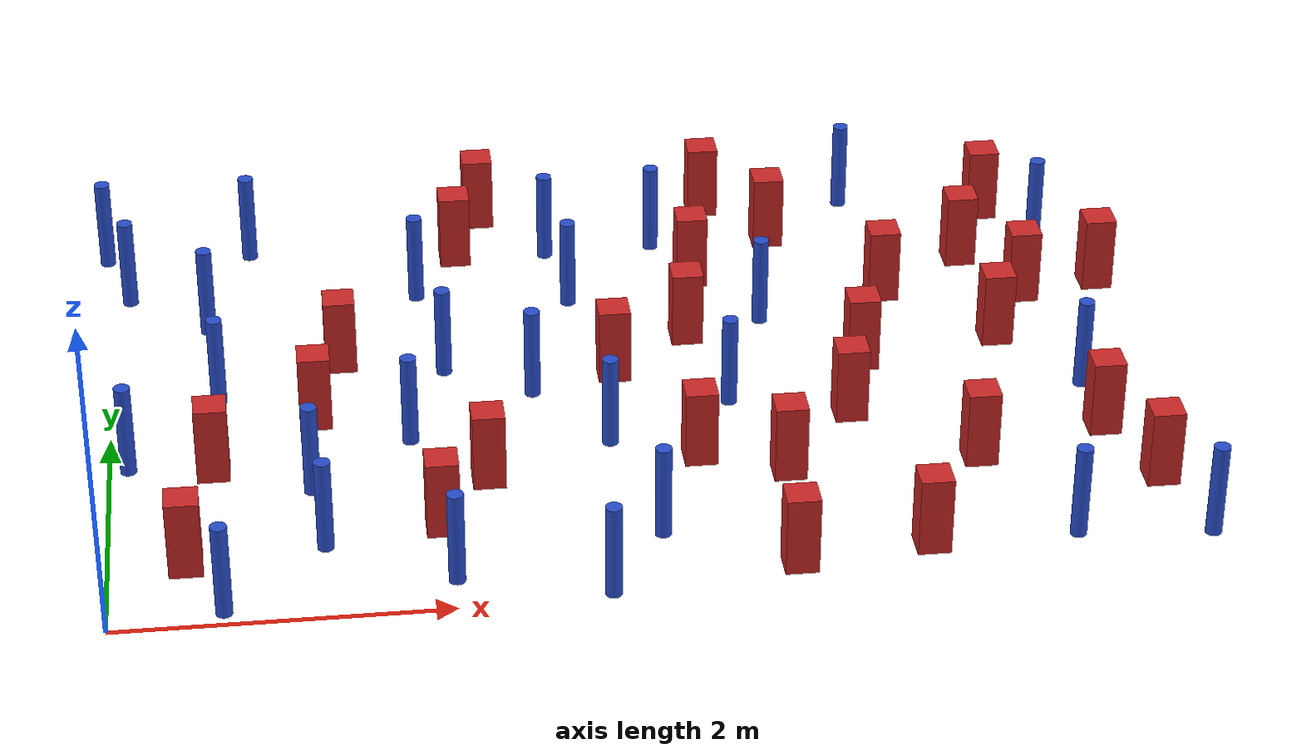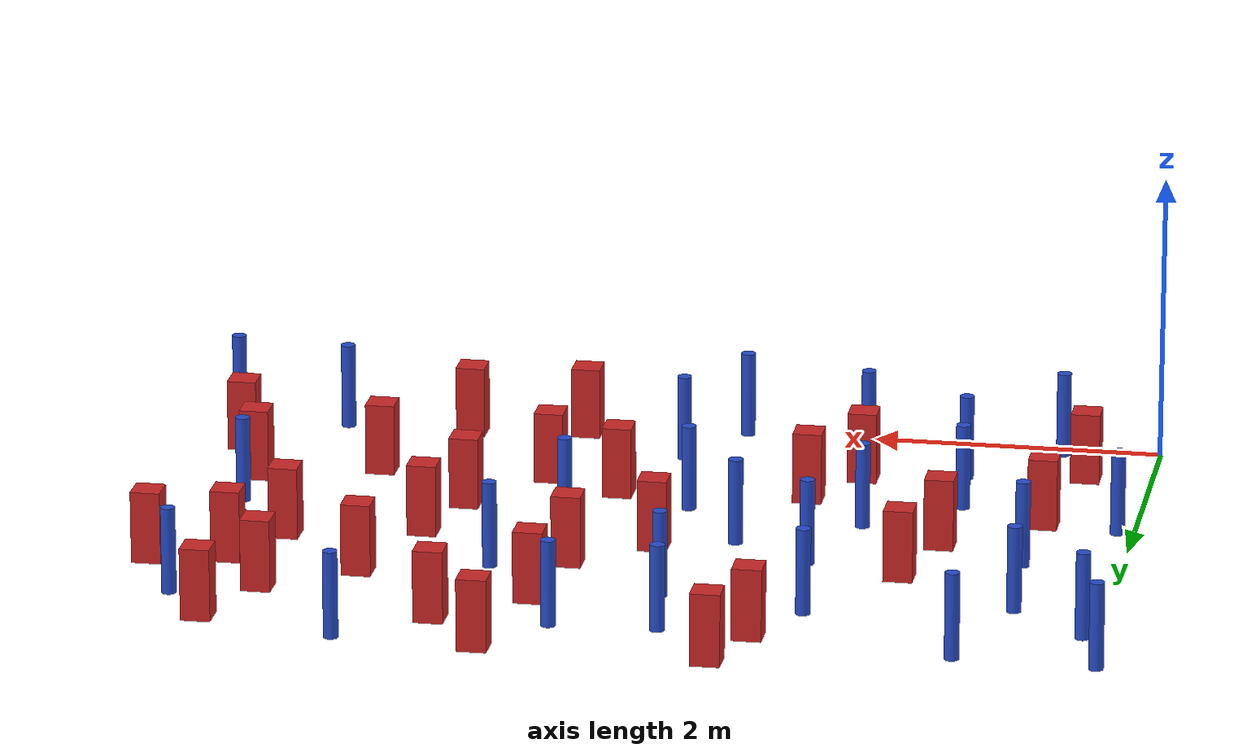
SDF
<sdf version="1.6">
 <model name="dense_34">
  <model name="pole_obstacle0">
   <static>true</static>
   <pose>3.049772285 1.62919026066 2.88873142074e-08 -9.90536689395e-09 4.60219949e-07 -1.20965994953e-07</pose>
   <link name="link">
    <pose>0 0 0.3 0 -0 0</pose>
    <inertial>
     <mass>1</mass>
     <inertia><ixx>0.145833</ixx><ixy>0</ixy><ixz>0</ixz><iyy>0.145833</iyy><iyz>0</iyz><izz>0.125</izz></inertia>
    </inertial>
    <collision name="collision">
     <geometry><cylinder><radius>0.05</radius><length>.6</length></cylinder></geometry>
    </collision>
    <visual name="visual">
     <geometry><cylinder><radius>0.05</radius><length>.6</length></cylinder></geometry>
     <material>
      <script><name>Gazebo/Blue</name><uri>file://media/materials/scripts/gazebo.material</uri></script>
     </material>
    </visual>
   </link>
  </model>
  <model name="square_post_obstacle21">
   <static>true</static>
   <pose>1.26049091219 2.07048775211 8.22691968438e-08 7.2212513382e-06 -7.54495500217e-07 2.29674213826e-05</pose>
   <link name="link">
    <pose>0 0 0.25 0 -0 0</pose>
    <inertial>
     <mass>100</mass>
     <inertia>
      <ixx>0.166667</ixx>
      <ixy>0</ixy>
      <ixz>0</ixz>
      <iyy>0.166667</iyy>
      <iyz>0</iyz>
      <izz>0.166667</izz>
     </inertia>
    </inertial>
    <collision name="collision"><geometry><box><size>.2 .2 .5</size></box></geometry></collision>
    <visual name="visual">
     <geometry><box><size>.2 .2 .5</size></box></geometry>
     <material>
      <script><name>Gazebo/Red</name><uri>file://media/materials/scripts/gazebo.material</uri></script>
     </material>
    </visual>
   </link>
  </model>
  <model name="pole_obstacle15">
   <static>true</static>
   <pose>1.83130481403 1.78242259484 2.88873142074e-08 -9.90536689672e-09 4.60219948993e-07 -1.20965994959e-07</pose>
   <link name="link">
    <pose>0 0 0.3 0 -0 0</pose>
    <inertial>
     <mass>1</mass>
     <inertia><ixx>0.145833</ixx><ixy>0</ixy><ixz>0</ixz><iyy>0.145833</iyy><iyz>0</iyz><izz>0.125</izz></inertia>
    </inertial>
    <collision name="collision">
     <geometry><cylinder><radius>0.05</radius><length>.6</length></cylinder></geometry>
    </collision>
    <visual name="visual">
     <geometry><cylinder><radius>0.05</radius><length>.6</length></cylinder></geometry>
     <material>
      <script><name>Gazebo/Blue</name><uri>file://media/materials/scripts/gazebo.material</uri></script>
     </material>
    </visual>
   </link>
  </model>
  <model name="square_post_obstacle25">
   <static>true</static>
   <pose>2.25905454459 3.99373080349 8.22691968438e-08 7.2212513382e-06 -7.54495500217e-07 2.29674213826e-05</pose>
   <link name="link">
    <pose>0 0 0.25 0 -0 0</pose>
    <inertial>
     <mass>100</mass>
     <inertia>
      <ixx>0.166667</ixx>
      <ixy>0</ixy>
      <ixz>0</ixz>
      <iyy>0.166667</iyy>
      <iyz>0</iyz>
      <izz>0.166667</izz>
     </inertia>
    </inertial>
    <collision name="collision"><geometry><box><size>.2 .2 .5</size></box></geometry></collision>
    <visual name="visual">
     <geometry><box><size>.2 .2 .5</size></box></geometry>
     <material>
      <script><name>Gazebo/Red</name><uri>file://media/materials/scripts/gazebo.material</uri></script>
     </material>
    </visual>
   </link>
  </model>
  <model name="square_post_obstacle31">
   <static>true</static>
   <pose>6.0948693656 1.46134708452 8.22691968438e-08 7.2212513382e-06 -7.54495500217e-07 2.29674213826e-05</pose>
   <link name="link">
    <pose>0 0 0.25 0 -0 0</pose>
    <inertial>
     <mass>100</mass>
     <inertia>
      <ixx>0.166667</ixx>
      <ixy>0</ixy>
      <ixz>0</ixz>
      <iyy>0.166667</iyy>
      <iyz>0</iyz>
      <izz>0.166667</izz>
     </inertia>
    </inertial>
    <collision name="collision"><geometry><box><size>.2 .2 .5</size></box></geometry></collision>
    <visual name="visual">
     <geometry><box><size>.2 .2 .5</size></box></geometry>
     <material>
      <script><name>Gazebo/Red</name><uri>file://media/materials/scripts/gazebo.material</uri></script>
     </material>
    </visual>
   </link>
  </model>
  <model name="square_post_obstacle33">
   <static>true</static>
   <pose>4.80002112037 0.321490979364 8.22691968438e-08 7.2212513382e-06 -7.54495500217e-07 2.29674213826e-05</pose>
   <link name="link">
    <pose>0 0 0.25 0 -0 0</pose>
    <inertial>
     <mass>100</mass>
     <inertia>
      <ixx>0.166667</ixx>
      <ixy>0</ixy>
      <ixz>0</ixz>
      <iyy>0.166667</iyy>
      <iyz>0</iyz>
      <izz>0.166667</izz>
     </inertia>
    </inertial>
    <collision name="collision"><geometry><box><size>.2 .2 .5</size></box></geometry></collision>
    <visual name="visual">
     <geometry><box><size>.2 .2 .5</size></box></geometry>
     <material>
      <script><name>Gazebo/Red</name><uri>file://media/materials/scripts/gazebo.material</uri></script>
     </material>
    </visual>
   </link>
  </model>
  <model name="square_post_obstacle38">
   <static>true</static>
   <pose>3.15564290903 2.4173542741 8.22691968438e-08 7.2212513382e-06 -7.54495500217e-07 2.29674213826e-05</pose>
   <link name="link">
    <pose>0 0 0.25 0 -0 0</pose>
    <inertial>
     <mass>100</mass>
     <inertia>
      <ixx>0.166667</ixx>
      <ixy>0</ixy>
      <ixz>0</ixz>
      <iyy>0.166667</iyy>
      <iyz>0</iyz>
      <izz>0.166667</izz>
     </inertia>
    </inertial>
    <collision name="collision"><geometry><box><size>.2 .2 .5</size></box></geometry></collision>
    <visual name="visual">
     <geometry><box><size>.2 .2 .5</size></box></geometry>
     <material>
      <script><name>Gazebo/Red</name><uri>file://media/materials/scripts/gazebo.material</uri></script>
     </material>
    </visual>
   </link>
  </model>
  <model name="pole_obstacle53">
   <static>true</static>
   <pose>2.86539569383 3.97959906179 2.88873142074e-08 -9.90536690801e-09 4.60219948966e-07 -1.20965994976e-07</pose>
   <link name="link">
    <pose>0 0 0.3 0 -0 0</pose>
    <inertial>
     <mass>1</mass>
     <inertia><ixx>0.145833</ixx><ixy>0</ixy><ixz>0</ixz><iyy>0.145833</iyy><iyz>0</iyz><izz>0.125</izz></inertia>
    </inertial>
    <collision name="collision">
     <geometry><cylinder><radius>0.05</radius><length>.6</length></cylinder></geometry>
    </collision>
    <visual name="visual">
     <geometry><cylinder><radius>0.05</radius><length>.6</length></cylinder></geometry>
     <material>
      <script><name>Gazebo/Blue</name><uri>file://media/materials/scripts/gazebo.material</uri></script>
     </material>
    </visual>
   </link>
  </model>
  <model name="pole_obstacle56">
   <static>true</static>
   <pose>-0.0509533749557 4.20188417264 2.88873142074e-08 -9.90536689643e-09 4.60219948994e-07 -1.20965994959e-07</pose>
   <link name="link">
    <pose>0 0 0.3 0 -0 0</pose>
    <inertial>
     <mass>1</mass>
     <inertia><ixx>0.145833</ixx><ixy>0</ixy><ixz>0</ixz><iyy>0.145833</iyy><iyz>0</iyz><izz>0.125</izz></inertia>
    </inertial>
    <collision name="collision">
     <geometry><cylinder><radius>0.05</radius><length>.6</length></cylinder></geometry>
    </collision>
    <visual name="visual">
     <geometry><cylinder><radius>0.05</radius><length>.6</length></cylinder></geometry>
     <material>
      <script><name>Gazebo/Blue</name><uri>file://media/materials/scripts/gazebo.material</uri></script>
     </material>
    </visual>
   </link>
  </model>
  <model name="pole_obstacle60">
   <static>true</static>
   <pose>4.94756713771 4.46294073131 2.88873142074e-08 -9.90536690842e-09 4.60219948965e-07 -1.20965994976e-07</pose>
   <link name="link">
    <pose>0 0 0.3 0 -0 0</pose>
    <inertial>
     <mass>1</mass>
     <inertia><ixx>0.145833</ixx><ixy>0</ixy><ixz>0</ixz><iyy>0.145833</iyy><iyz>0</iyz><izz>0.125</izz></inertia>
    </inertial>
    <collision name="collision">
     <geometry><cylinder><radius>0.05</radius><length>.6</length></cylinder></geometry>
    </collision>
    <visual name="visual">
     <geometry><cylinder><radius>0.05</radius><length>.6</length></cylinder></geometry>
     <material>
      <script><name>Gazebo/Blue</name><uri>file://media/materials/scripts/gazebo.material</uri></script>
     </material>
    </visual>
   </link>
  </model>
  <model name="square_post_obstacle62">
   <static>true</static>
   <pose>0.623637131792 1.55662372302 8.22691968438e-08 7.2212513382e-06 -7.54495500217e-07 2.29674213826e-05</pose>
   <link name="link">
    <pose>0 0 0.25 0 -0 0</pose>
    <inertial>
     <mass>100</mass>
     <inertia>
      <ixx>0.166667</ixx>
      <ixy>0</ixy>
      <ixz>0</ixz>
      <iyy>0.166667</iyy>
      <iyz>0</iyz>
      <izz>0.166667</izz>
     </inertia>
    </inertial>
    <collision name="collision"><geometry><box><size>.2 .2 .5</size></box></geometry></collision>
    <visual name="visual">
     <geometry><box><size>.2 .2 .5</size></box></geometry>
     <material>
      <script><name>Gazebo/Red</name><uri>file://media/materials/scripts/gazebo.material</uri></script>
     </material>
    </visual>
   </link>
  </model>
  <model name="square_post_obstacle63">
   <static>true</static>
   <pose>2.45095350222 4.49696859509 8.22691968438e-08 7.2212513382e-06 -7.54495500217e-07 2.29674213826e-05</pose>
   <link name="link">
    <pose>0 0 0.25 0 -0 0</pose>
    <inertial>
     <mass>100</mass>
     <inertia>
      <ixx>0.166667</ixx>
      <ixy>0</ixy>
      <ixz>0</ixz>
      <iyy>0.166667</iyy>
      <iyz>0</iyz>
      <izz>0.166667</izz>
     </inertia>
    </inertial>
    <collision name="collision"><geometry><box><size>.2 .2 .5</size></box></geometry></collision>
    <visual name="visual">
     <geometry><box><size>.2 .2 .5</size></box></geometry>
     <material>
      <script><name>Gazebo/Red</name><uri>file://media/materials/scripts/gazebo.material</uri></script>
     </material>
    </visual>
   </link>
  </model>
  <model name="square_post_obstacle64">
   <static>true</static>
   <pose>5.61569513435 3.62039335274 8.22691968438e-08 7.2212513382e-06 -7.54495500217e-07 2.29674213826e-05</pose>
   <link name="link">
    <pose>0 0 0.25 0 -0 0</pose>
    <inertial>
     <mass>100</mass>
     <inertia>
      <ixx>0.166667</ixx>
      <ixy>0</ixy>
      <ixz>0</ixz>
      <iyy>0.166667</iyy>
      <iyz>0</iyz>
      <izz>0.166667</izz>
     </inertia>
    </inertial>
    <collision name="collision"><geometry><box><size>.2 .2 .5</size></box></geometry></collision>
    <visual name="visual">
     <geometry><box><size>.2 .2 .5</size></box></geometry>
     <material>
      <script><name>Gazebo/Red</name><uri>file://media/materials/scripts/gazebo.material</uri></script>
     </material>
    </visual>
   </link>
  </model>
  <model name="square_post_obstacle70">
   <static>true</static>
   <pose>5.65078048055 2.58453810681 8.22691968438e-08 7.2212513382e-06 -7.54495500217e-07 2.29674213826e-05</pose>
   <link name="link">
    <pose>0 0 0.25 0 -0 0</pose>
    <inertial>
     <mass>100</mass>
     <inertia>
      <ixx>0.166667</ixx>
      <ixy>0</ixy>
      <ixz>0</ixz>
      <iyy>0.166667</iyy>
      <iyz>0</iyz>
      <izz>0.166667</izz>
     </inertia>
    </inertial>
    <collision name="collision"><geometry><box><size>.2 .2 .5</size></box></geometry></collision>
    <visual name="visual">
     <geometry><box><size>.2 .2 .5</size></box></geometry>
     <material>
      <script><name>Gazebo/Red</name><uri>file://media/materials/scripts/gazebo.material</uri></script>
     </material>
    </visual>
   </link>
  </model>
  <model name="square_post_obstacle71">
   <static>true</static>
   <pose>4.56409459324 1.78852129041 8.22691968438e-08 7.2212513382e-06 -7.54495500217e-07 2.29674213826e-05</pose>
   <link name="link">
    <pose>0 0 0.25 0 -0 0</pose>
    <inertial>
     <mass>100</mass>
     <inertia>
      <ixx>0.166667</ixx>
      <ixy>0</ixy>
      <ixz>0</ixz>
      <iyy>0.166667</iyy>
      <iyz>0</iyz>
      <izz>0.166667</izz>
     </inertia>
    </inertial>
    <collision name="collision"><geometry><box><size>.2 .2 .5</size></box></geometry></collision>
    <visual name="visual">
     <geometry><box><size>.2 .2 .5</size></box></geometry>
     <material>
      <script><name>Gazebo/Red</name><uri>file://media/materials/scripts/gazebo.material</uri></script>
     </material>
    </visual>
   </link>
  </model>
  <model name="pole_obstacle71">
   <static>true</static>
   <pose>6.4777378661 0.260255952438 2.88873142074e-08 -9.90536689883e-09 4.60219948988e-07 -1.20965994961e-07</pose>
   <link name="link">
    <pose>0 0 0.3 0 -0 0</pose>
    <inertial>
     <mass>1</mass>
     <inertia><ixx>0.145833</ixx><ixy>0</ixy><ixz>0</ixz><iyy>0.145833</iyy><iyz>0</iyz><izz>0.125</izz></inertia>
    </inertial>
    <collision name="collision">
     <geometry><cylinder><radius>0.05</radius><length>.6</length></cylinder></geometry>
    </collision>
    <visual name="visual">
     <geometry><cylinder><radius>0.05</radius><length>.6</length></cylinder></geometry>
     <material>
      <script><name>Gazebo/Blue</name><uri>file://media/materials/scripts/gazebo.material</uri></script>
     </material>
    </visual>
   </link>
  </model>
  <model name="square_post_obstacle80">
   <static>true</static>
   <pose>4.08681037357 1.18147574948 8.22691968438e-08 7.2212513382e-06 -7.54495500217e-07 2.29674213826e-05</pose>
   <link name="link">
    <pose>0 0 0.25 0 -0 0</pose>
    <inertial>
     <mass>100</mass>
     <inertia>
      <ixx>0.166667</ixx>
      <ixy>0</ixy>
      <ixz>0</ixz>
      <iyy>0.166667</iyy>
      <iyz>0</iyz>
      <izz>0.166667</izz>
     </inertia>
    </inertial>
    <collision name="collision"><geometry><box><size>.2 .2 .5</size></box></geometry></collision>
    <visual name="visual">
     <geometry><box><size>.2 .2 .5</size></box></geometry>
     <material>
      <script><name>Gazebo/Red</name><uri>file://media/materials/scripts/gazebo.material</uri></script>
     </material>
    </visual>
   </link>
  </model>
  <model name="square_post_obstacle81">
   <static>true</static>
   <pose>3.67015366936 2.81922112893 8.22691968438e-08 7.2212513382e-06 -7.54495500217e-07 2.29674213826e-05</pose>
   <link name="link">
    <pose>0 0 0.25 0 -0 0</pose>
    <inertial>
     <mass>100</mass>
     <inertia>
      <ixx>0.166667</ixx>
      <ixy>0</ixy>
      <ixz>0</ixz>
      <iyy>0.166667</iyy>
      <iyz>0</iyz>
      <izz>0.166667</izz>
     </inertia>
    </inertial>
    <collision name="collision"><geometry><box><size>.2 .2 .5</size></box></geometry></collision>
    <visual name="visual">
     <geometry><box><size>.2 .2 .5</size></box></geometry>
     <material>
      <script><name>Gazebo/Red</name><uri>file://media/materials/scripts/gazebo.material</uri></script>
     </material>
    </visual>
   </link>
  </model>
  <model name="pole_obstacle88">
   <static>true</static>
   <pose>2.62601227075 2.24692529022 2.88873142074e-08 -9.90536690232e-09 4.6021994898e-07 -1.20965994968e-07</pose>
   <link name="link">
    <pose>0 0 0.3 0 -0 0</pose>
    <inertial>
     <mass>1</mass>
     <inertia><ixx>0.145833</ixx><ixy>0</ixy><ixz>0</ixz><iyy>0.145833</iyy><iyz>0</iyz><izz>0.125</izz></inertia>
    </inertial>
    <collision name="collision">
     <geometry><cylinder><radius>0.05</radius><length>.6</length></cylinder></geometry>
    </collision>
    <visual name="visual">
     <geometry><cylinder><radius>0.05</radius><length>.6</length></cylinder></geometry>
     <material>
      <script><name>Gazebo/Blue</name><uri>file://media/materials/scripts/gazebo.material</uri></script>
     </material>
    </visual>
   </link>
  </model>
  <model name="pole_obstacle89">
   <static>true</static>
   <pose>3.83901957101 2.01076483617 2.88873142074e-08 -9.90536689662e-09 4.60219948993e-07 -1.20965994957e-07</pose>
   <link name="link">
    <pose>0 0 0.3 0 -0 0</pose>
    <inertial>
     <mass>1</mass>
     <inertia><ixx>0.145833</ixx><ixy>0</ixy><ixz>0</ixz><iyy>0.145833</iyy><iyz>0</iyz><izz>0.125</izz></inertia>
    </inertial>
    <collision name="collision">
     <geometry><cylinder><radius>0.05</radius><length>.6</length></cylinder></geometry>
    </collision>
    <visual name="visual">
     <geometry><cylinder><radius>0.05</radius><length>.6</length></cylinder></geometry>
     <material>
      <script><name>Gazebo/Blue</name><uri>file://media/materials/scripts/gazebo.material</uri></script>
     </material>
    </visual>
   </link>
  </model>
  <model name="pole_obstacle93">
   <static>true</static>
   <pose>4.17531212841 2.96968888223 2.88873142074e-08 -9.90536690245e-09 4.6021994898e-07 -1.20965994966e-07</pose>
   <link name="link">
    <pose>0 0 0.3 0 -0 0</pose>
    <inertial>
     <mass>1</mass>
     <inertia><ixx>0.145833</ixx><ixy>0</ixy><ixz>0</ixz><iyy>0.145833</iyy><iyz>0</iyz><izz>0.125</izz></inertia>
    </inertial>
    <collision name="collision">
     <geometry><cylinder><radius>0.05</radius><length>.6</length></cylinder></geometry>
    </collision>
    <visual name="visual">
     <geometry><cylinder><radius>0.05</radius><length>.6</length></cylinder></geometry>
     <material>
      <script><name>Gazebo/Blue</name><uri>file://media/materials/scripts/gazebo.material</uri></script>
     </material>
    </visual>
   </link>
  </model>
  <model name="square_post_obstacle84">
   <static>true</static>
   <pose>4.37230281539 4.01572510302 8.22691968438e-08 7.22125133819e-06 -7.54495500217e-07 2.29674213826e-05</pose>
   <link name="link">
    <pose>0 0 0.25 0 -0 0</pose>
    <inertial>
     <mass>100</mass>
     <inertia>
      <ixx>0.166667</ixx>
      <ixy>0</ixy>
      <ixz>0</ixz>
      <iyy>0.166667</iyy>
      <iyz>0</iyz>
      <izz>0.166667</izz>
     </inertia>
    </inertial>
    <collision name="collision"><geometry><box><size>.2 .2 .5</size></box></geometry></collision>
    <visual name="visual">
     <geometry><box><size>.2 .2 .5</size></box></geometry>
     <material>
      <script><name>Gazebo/Red</name><uri>file://media/materials/scripts/gazebo.material</uri></script>
     </material>
    </visual>
   </link>
  </model>
  <model name="square_post_obstacle90">
   <static>true</static>
   <pose>4.00096132078 0.212900404265 8.22691968438e-08 7.2212513382e-06 -7.54495500217e-07 2.29674213826e-05</pose>
   <link name="link">
    <pose>0 0 0.25 0 -0 0</pose>
    <inertial>
     <mass>100</mass>
     <inertia>
      <ixx>0.166667</ixx>
      <ixy>0</ixy>
      <ixz>0</ixz>
      <iyy>0.166667</iyy>
      <iyz>0</iyz>
      <izz>0.166667</izz>
     </inertia>
    </inertial>
    <collision name="collision"><geometry><box><size>.2 .2 .5</size></box></geometry></collision>
    <visual name="visual">
     <geometry><box><size>.2 .2 .5</size></box></geometry>
     <material>
      <script><name>Gazebo/Red</name><uri>file://media/materials/scripts/gazebo.material</uri></script>
     </material>
    </visual>
   </link>
  </model>
  <model name="pole_obstacle103">
   <static>true</static>
   <pose>6.17644602194 3.82168749053 2.88873142074e-08 -9.90536690245e-09 4.6021994898e-07 -1.20965994966e-07</pose>
   <link name="link">
    <pose>0 0 0.3 0 -0 0</pose>
    <inertial>
     <mass>1</mass>
     <inertia><ixx>0.145833</ixx><ixy>0</ixy><ixz>0</ixz><iyy>0.145833</iyy><iyz>0</iyz><izz>0.125</izz></inertia>
    </inertial>
    <collision name="collision">
     <geometry><cylinder><radius>0.05</radius><length>.6</length></cylinder></geometry>
    </collision>
    <visual name="visual">
     <geometry><cylinder><radius>0.05</radius><length>.6</length></cylinder></geometry>
     <material>
      <script><name>Gazebo/Blue</name><uri>file://media/materials/scripts/gazebo.material</uri></script>
     </material>
    </visual>
   </link>
  </model>
  <model name="pole_obstacle108">
   <static>true</static>
   <pose>1.26824466769 0.695147442263 2.88873142074e-08 -9.90536689692e-09 4.60219948993e-07 -1.20965994958e-07</pose>
   <link name="link">
    <pose>0 0 0.3 0 -0 0</pose>
    <inertial>
     <mass>1</mass>
     <inertia><ixx>0.145833</ixx><ixy>0</ixy><ixz>0</ixz><iyy>0.145833</iyy><iyz>0</iyz><izz>0.125</izz></inertia>
    </inertial>
    <collision name="collision">
     <geometry><cylinder><radius>0.05</radius><length>.6</length></cylinder></geometry>
    </collision>
    <visual name="visual">
     <geometry><cylinder><radius>0.05</radius><length>.6</length></cylinder></geometry>
     <material>
      <script><name>Gazebo/Blue</name><uri>file://media/materials/scripts/gazebo.material</uri></script>
     </material>
    </visual>
   </link>
  </model>
  <model name="pole_obstacle111">
   <static>true</static>
   <pose>2.95857027693 3.33795565764 2.88873142074e-08 -9.90536690232e-09 4.6021994898e-07 -1.20965994968e-07</pose>
   <link name="link">
    <pose>0 0 0.3 0 -0 0</pose>
    <inertial>
     <mass>1</mass>
     <inertia><ixx>0.145833</ixx><ixy>0</ixy><ixz>0</ixz><iyy>0.145833</iyy><iyz>0</iyz><izz>0.125</izz></inertia>
    </inertial>
    <collision name="collision">
     <geometry><cylinder><radius>0.05</radius><length>.6</length></cylinder></geometry>
    </collision>
    <visual name="visual">
     <geometry><cylinder><radius>0.05</radius><length>.6</length></cylinder></geometry>
     <material>
      <script><name>Gazebo/Blue</name><uri>file://media/materials/scripts/gazebo.material</uri></script>
     </material>
    </visual>
   </link>
  </model>
  <model name="pole_obstacle114">
   <static>true</static>
   <pose>5.6821173335 0.335346684699 2.88873142074e-08 -9.90536689981e-09 4.60219948986e-07 -1.20965994962e-07</pose>
   <link name="link">
    <pose>0 0 0.3 0 -0 0</pose>
    <inertial>
     <mass>1</mass>
     <inertia><ixx>0.145833</ixx><ixy>0</ixy><ixz>0</ixz><iyy>0.145833</iyy><iyz>0</iyz><izz>0.125</izz></inertia>
    </inertial>
    <collision name="collision">
     <geometry><cylinder><radius>0.05</radius><length>.6</length></cylinder></geometry>
    </collision>
    <visual name="visual">
     <geometry><cylinder><radius>0.05</radius><length>.6</length></cylinder></geometry>
     <material>
      <script><name>Gazebo/Blue</name><uri>file://media/materials/scripts/gazebo.material</uri></script>
     </material>
    </visual>
   </link>
  </model>
  <model name="square_post_obstacle111">
   <static>true</static>
   <pose>5.93407589627 3.10373790262 8.22691968438e-08 7.2212513382e-06 -7.54495500217e-07 2.29674213826e-05</pose>
   <link name="link">
    <pose>0 0 0.25 0 -0 0</pose>
    <inertial>
     <mass>100</mass>
     <inertia>
      <ixx>0.166667</ixx>
      <ixy>0</ixy>
      <ixz>0</ixz>
      <iyy>0.166667</iyy>
      <iyz>0</iyz>
      <izz>0.166667</izz>
     </inertia>
    </inertial>
    <collision name="collision"><geometry><box><size>.2 .2 .5</size></box></geometry></collision>
    <visual name="visual">
     <geometry><box><size>.2 .2 .5</size></box></geometry>
     <material>
      <script><name>Gazebo/Red</name><uri>file://media/materials/scripts/gazebo.material</uri></script>
     </material>
    </visual>
   </link>
  </model>
  <model name="square_post_obstacle112">
   <static>true</static>
   <pose>6.45338993447 3.21177440489 8.22691968438e-08 7.2212513382e-06 -7.54495500217e-07 2.29674213826e-05</pose>
   <link name="link">
    <pose>0 0 0.25 0 -0 0</pose>
    <inertial>
     <mass>100</mass>
     <inertia>
      <ixx>0.166667</ixx>
      <ixy>0</ixy>
      <ixz>0</ixz>
      <iyy>0.166667</iyy>
      <iyz>0</iyz>
      <izz>0.166667</izz>
     </inertia>
    </inertial>
    <collision name="collision"><geometry><box><size>.2 .2 .5</size></box></geometry></collision>
    <visual name="visual">
     <geometry><box><size>.2 .2 .5</size></box></geometry>
     <material>
      <script><name>Gazebo/Red</name><uri>file://media/materials/scripts/gazebo.material</uri></script>
     </material>
    </visual>
   </link>
  </model>
  <model name="pole_obstacle124">
   <static>true</static>
   <pose>0.667881865131 0.104302011092 2.88873142074e-08 -9.90536689567e-09 4.60219948996e-07 -1.20965994956e-07</pose>
   <link name="link">
    <pose>0 0 0.3 0 -0 0</pose>
    <inertial>
     <mass>1</mass>
     <inertia><ixx>0.145833</ixx><ixy>0</ixy><ixz>0</ixz><iyy>0.145833</iyy><iyz>0</iyz><izz>0.125</izz></inertia>
    </inertial>
    <collision name="collision">
     <geometry><cylinder><radius>0.05</radius><length>.6</length></cylinder></geometry>
    </collision>
    <visual name="visual">
     <geometry><cylinder><radius>0.05</radius><length>.6</length></cylinder></geometry>
     <material>
      <script><name>Gazebo/Blue</name><uri>file://media/materials/scripts/gazebo.material</uri></script>
     </material>
    </visual>
   </link>
  </model>
  <model name="pole_obstacle127">
   <static>true</static>
   <pose>2.09037619163 2.56489498638 2.88873142074e-08 -9.90536690232e-09 4.6021994898e-07 -1.20965994968e-07</pose>
   <link name="link">
    <pose>0 0 0.3 0 -0 0</pose>
    <inertial>
     <mass>1</mass>
     <inertia><ixx>0.145833</ixx><ixy>0</ixy><ixz>0</ixz><iyy>0.145833</iyy><iyz>0</iyz><izz>0.125</izz></inertia>
    </inertial>
    <collision name="collision">
     <geometry><cylinder><radius>0.05</radius><length>.6</length></cylinder></geometry>
    </collision>
    <visual name="visual">
     <geometry><cylinder><radius>0.05</radius><length>.6</length></cylinder></geometry>
     <material>
      <script><name>Gazebo/Blue</name><uri>file://media/materials/scripts/gazebo.material</uri></script>
     </material>
    </visual>
   </link>
  </model>
  <model name="pole_obstacle129">
   <static>true</static>
   <pose>0.111116087555 1.6358760105 2.88873142074e-08 -9.90536689982e-09 4.60219948986e-07 -1.20965994964e-07</pose>
   <link name="link">
    <pose>0 0 0.3 0 -0 0</pose>
    <inertial>
     <mass>1</mass>
     <inertia><ixx>0.145833</ixx><ixy>0</ixy><ixz>0</ixz><iyy>0.145833</iyy><iyz>0</iyz><izz>0.125</izz></inertia>
    </inertial>
    <collision name="collision">
     <geometry><cylinder><radius>0.05</radius><length>.6</length></cylinder></geometry>
    </collision>
    <visual name="visual">
     <geometry><cylinder><radius>0.05</radius><length>.6</length></cylinder></geometry>
     <material>
      <script><name>Gazebo/Blue</name><uri>file://media/materials/scripts/gazebo.material</uri></script>
     </material>
    </visual>
   </link>
  </model>
  <model name="pole_obstacle130">
   <static>true</static>
   <pose>1.21184137879 1.29627932427 2.88873142074e-08 -9.90536689672e-09 4.60219948993e-07 -1.20965994959e-07</pose>
   <link name="link">
    <pose>0 0 0.3 0 -0 0</pose>
    <inertial>
     <mass>1</mass>
     <inertia><ixx>0.145833</ixx><ixy>0</ixy><ixz>0</ixz><iyy>0.145833</iyy><iyz>0</iyz><izz>0.125</izz></inertia>
    </inertial>
    <collision name="collision">
     <geometry><cylinder><radius>0.05</radius><length>.6</length></cylinder></geometry>
    </collision>
    <visual name="visual">
     <geometry><cylinder><radius>0.05</radius><length>.6</length></cylinder></geometry>
     <material>
      <script><name>Gazebo/Blue</name><uri>file://media/materials/scripts/gazebo.material</uri></script>
     </material>
    </visual>
   </link>
  </model>
  <model name="pole_obstacle133">
   <static>true</static>
   <pose>6.07886590927 1.96816235913 2.88873142074e-08 -9.90536689273e-09 4.60219949003e-07 -1.20965994953e-07</pose>
   <link name="link">
    <pose>0 0 0.3 0 -0 0</pose>
    <inertial>
     <mass>1</mass>
     <inertia><ixx>0.145833</ixx><ixy>0</ixy><ixz>0</ixz><iyy>0.145833</iyy><iyz>0</iyz><izz>0.125</izz></inertia>
    </inertial>
    <collision name="collision">
     <geometry><cylinder><radius>0.05</radius><length>.6</length></cylinder></geometry>
    </collision>
    <visual name="visual">
     <geometry><cylinder><radius>0.05</radius><length>.6</length></cylinder></geometry>
     <material>
      <script><name>Gazebo/Blue</name><uri>file://media/materials/scripts/gazebo.material</uri></script>
     </material>
    </visual>
   </link>
  </model>
  <model name="pole_obstacle138">
   <static>true</static>
   <pose>0.104031653515 3.65919974538 2.88873142074e-08 -9.90536689907e-09 4.60219948988e-07 -1.20965994961e-07</pose>
   <link name="link">
    <pose>0 0 0.3 0 -0 0</pose>
    <inertial>
     <mass>1</mass>
     <inertia><ixx>0.145833</ixx><ixy>0</ixy><ixz>0</ixz><iyy>0.145833</iyy><iyz>0</iyz><izz>0.125</izz></inertia>
    </inertial>
    <collision name="collision">
     <geometry><cylinder><radius>0.05</radius><length>.6</length></cylinder></geometry>
    </collision>
    <visual name="visual">
     <geometry><cylinder><radius>0.05</radius><length>.6</length></cylinder></geometry>
     <material>
      <script><name>Gazebo/Blue</name><uri>file://media/materials/scripts/gazebo.material</uri></script>
     </material>
    </visual>
   </link>
  </model>
  <model name="square_post_obstacle119">
   <static>true</static>
   <pose>5.88640751658 4.23069218788 8.22691968438e-08 7.2212513382e-06 -7.54495500217e-07 2.29674213826e-05</pose>
   <link name="link">
    <pose>0 0 0.25 0 -0 0</pose>
    <inertial>
     <mass>100</mass>
     <inertia>
      <ixx>0.166667</ixx>
      <ixy>0</ixy>
      <ixz>0</ixz>
      <iyy>0.166667</iyy>
      <iyz>0</iyz>
      <izz>0.166667</izz>
     </inertia>
    </inertial>
    <collision name="collision"><geometry><box><size>.2 .2 .5</size></box></geometry></collision>
    <visual name="visual">
     <geometry><box><size>.2 .2 .5</size></box></geometry>
     <material>
      <script><name>Gazebo/Red</name><uri>file://media/materials/scripts/gazebo.material</uri></script>
     </material>
    </visual>
   </link>
  </model>
  <model name="square_post_obstacle120">
   <static>true</static>
   <pose>5.02037151944 3.21566163851 8.22691968438e-08 7.2212513382e-06 -7.54495500217e-07 2.29674213826e-05</pose>
   <link name="link">
    <pose>0 0 0.25 0 -0 0</pose>
    <inertial>
     <mass>100</mass>
     <inertia>
      <ixx>0.166667</ixx>
      <ixy>0</ixy>
      <ixz>0</ixz>
      <iyy>0.166667</iyy>
      <iyz>0</iyz>
      <izz>0.166667</izz>
     </inertia>
    </inertial>
    <collision name="collision"><geometry><box><size>.2 .2 .5</size></box></geometry></collision>
    <visual name="visual">
     <geometry><box><size>.2 .2 .5</size></box></geometry>
     <material>
      <script><name>Gazebo/Red</name><uri>file://media/materials/scripts/gazebo.material</uri></script>
     </material>
    </visual>
   </link>
  </model>
  <model name="pole_obstacle142">
   <static>true</static>
   <pose>0.6092676729 3.23554377102 2.88873142074e-08 -9.90536689636e-09 4.60219948994e-07 -1.20965994958e-07</pose>
   <link name="link">
    <pose>0 0 0.3 0 -0 0</pose>
    <inertial>
     <mass>1</mass>
     <inertia><ixx>0.145833</ixx><ixy>0</ixy><ixz>0</ixz><iyy>0.145833</iyy><iyz>0</iyz><izz>0.125</izz></inertia>
    </inertial>
    <collision name="collision">
     <geometry><cylinder><radius>0.05</radius><length>.6</length></cylinder></geometry>
    </collision>
    <visual name="visual">
     <geometry><cylinder><radius>0.05</radius><length>.6</length></cylinder></geometry>
     <material>
      <script><name>Gazebo/Blue</name><uri>file://media/materials/scripts/gazebo.material</uri></script>
     </material>
    </visual>
   </link>
  </model>
  <model name="square_post_obstacle131">
   <static>true</static>
   <pose>1.44350993888 2.72549859322 8.22691968438e-08 7.2212513382e-06 -7.54495500217e-07 2.29674213826e-05</pose>
   <link name="link">
    <pose>0 0 0.25 0 -0 0</pose>
    <inertial>
     <mass>100</mass>
     <inertia>
      <ixx>0.166667</ixx>
      <ixy>0</ixy>
      <ixz>0</ixz>
      <iyy>0.166667</iyy>
      <iyz>0</iyz>
      <izz>0.166667</izz>
     </inertia>
    </inertial>
    <collision name="collision"><geometry><box><size>.2 .2 .5</size></box></geometry></collision>
    <visual name="visual">
     <geometry><box><size>.2 .2 .5</size></box></geometry>
     <material>
      <script><name>Gazebo/Red</name><uri>file://media/materials/scripts/gazebo.material</uri></script>
     </material>
    </visual>
   </link>
  </model>
  <model name="square_post_obstacle135">
   <static>true</static>
   <pose>4.74016336449 2.38019699534 8.22691968438e-08 7.2212513382e-06 -7.54495500217e-07 2.29674213826e-05</pose>
   <link name="link">
    <pose>0 0 0.25 0 -0 0</pose>
    <inertial>
     <mass>100</mass>
     <inertia>
      <ixx>0.166667</ixx>
      <ixy>0</ixy>
      <ixz>0</ixz>
      <iyy>0.166667</iyy>
      <iyz>0</iyz>
      <izz>0.166667</izz>
     </inertia>
    </inertial>
    <collision name="collision"><geometry><box><size>.2 .2 .5</size></box></geometry></collision>
    <visual name="visual">
     <geometry><box><size>.2 .2 .5</size></box></geometry>
     <material>
      <script><name>Gazebo/Red</name><uri>file://media/materials/scripts/gazebo.material</uri></script>
     </material>
    </visual>
   </link>
  </model>
  <model name="pole_obstacle146">
   <static>true</static>
   <pose>2.00973384978 0.277015715168 2.88873142074e-08 -9.90536692563e-09 4.60219948925e-07 -1.20965994991e-07</pose>
   <link name="link">
    <pose>0 0 0.3 0 -0 0</pose>
    <inertial>
     <mass>1</mass>
     <inertia><ixx>0.145833</ixx><ixy>0</ixy><ixz>0</ixz><iyy>0.145833</iyy><iyz>0</iyz><izz>0.125</izz></inertia>
    </inertial>
    <collision name="collision">
     <geometry><cylinder><radius>0.05</radius><length>.6</length></cylinder></geometry>
    </collision>
    <visual name="visual">
     <geometry><cylinder><radius>0.05</radius><length>.6</length></cylinder></geometry>
     <material>
      <script><name>Gazebo/Blue</name><uri>file://media/materials/scripts/gazebo.material</uri></script>
     </material>
    </visual>
   </link>
  </model>
  <model name="pole_obstacle149">
   <static>true</static>
   <pose>2.89332643088 0.044701762669 2.88873142074e-08 -9.905366921e-09 4.60219948936e-07 -1.20965994985e-07</pose>
   <link name="link">
    <pose>0 0 0.3 0 -0 0</pose>
    <inertial>
     <mass>1</mass>
     <inertia><ixx>0.145833</ixx><ixy>0</ixy><ixz>0</ixz><iyy>0.145833</iyy><iyz>0</iyz><izz>0.125</izz></inertia>
    </inertial>
    <collision name="collision">
     <geometry><cylinder><radius>0.05</radius><length>.6</length></cylinder></geometry>
    </collision>
    <visual name="visual">
     <geometry><cylinder><radius>0.05</radius><length>.6</length></cylinder></geometry>
     <material>
      <script><name>Gazebo/Blue</name><uri>file://media/materials/scripts/gazebo.material</uri></script>
     </material>
    </visual>
   </link>
  </model>
  <model name="pole_obstacle154">
   <static>true</static>
   <pose>3.24959343019 0.612277359932 2.88873142074e-08 -9.90536689285e-09 4.60219949002e-07 -1.20965994953e-07</pose>
   <link name="link">
    <pose>0 0 0.3 0 -0 0</pose>
    <inertial>
     <mass>1</mass>
     <inertia><ixx>0.145833</ixx><ixy>0</ixy><ixz>0</ixz><iyy>0.145833</iyy><iyz>0</iyz><izz>0.125</izz></inertia>
    </inertial>
    <collision name="collision">
     <geometry><cylinder><radius>0.05</radius><length>.6</length></cylinder></geometry>
    </collision>
    <visual name="visual">
     <geometry><cylinder><radius>0.05</radius><length>.6</length></cylinder></geometry>
     <material>
      <script><name>Gazebo/Blue</name><uri>file://media/materials/scripts/gazebo.material</uri></script>
     </material>
    </visual>
   </link>
  </model>
  <model name="pole_obstacle158">
   <static>true</static>
   <pose>3.5852293413 4.01375940114 2.88873142074e-08 -9.90536689848e-09 4.60219948989e-07 -1.20965994961e-07</pose>
   <link name="link">
    <pose>0 0 0.3 0 -0 0</pose>
    <inertial>
     <mass>1</mass>
     <inertia><ixx>0.145833</ixx><ixy>0</ixy><ixz>0</ixz><iyy>0.145833</iyy><iyz>0</iyz><izz>0.125</izz></inertia>
    </inertial>
    <collision name="collision">
     <geometry><cylinder><radius>0.05</radius><length>.6</length></cylinder></geometry>
    </collision>
    <visual name="visual">
     <geometry><cylinder><radius>0.05</radius><length>.6</length></cylinder></geometry>
     <material>
      <script><name>Gazebo/Blue</name><uri>file://media/materials/scripts/gazebo.material</uri></script>
     </material>
    </visual>
   </link>
  </model>
  <model name="square_post_obstacle152">
   <static>true</static>
   <pose>3.99046249471 4.4894553386 8.22691968438e-08 7.2212513382e-06 -7.54495500217e-07 2.29674213826e-05</pose>
   <link name="link">
    <pose>0 0 0.25 0 -0 0</pose>
    <inertial>
     <mass>100</mass>
     <inertia>
      <ixx>0.166667</ixx>
      <ixy>0</ixy>
      <ixz>0</ixz>
      <iyy>0.166667</iyy>
      <iyz>0</iyz>
      <izz>0.166667</izz>
     </inertia>
    </inertial>
    <collision name="collision"><geometry><box><size>.2 .2 .5</size></box></geometry></collision>
    <visual name="visual">
     <geometry><box><size>.2 .2 .5</size></box></geometry>
     <material>
      <script><name>Gazebo/Red</name><uri>file://media/materials/scripts/gazebo.material</uri></script>
     </material>
    </visual>
   </link>
  </model>
  <model name="square_post_obstacle153">
   <static>true</static>
   <pose>6.3107117351 0.869529029615 8.22691968438e-08 7.2212513382e-06 -7.54495500217e-07 2.29674213826e-05</pose>
   <link name="link">
    <pose>0 0 0.25 0 -0 0</pose>
    <inertial>
     <mass>100</mass>
     <inertia>
      <ixx>0.166667</ixx>
      <ixy>0</ixy>
      <ixz>0</ixz>
      <iyy>0.166667</iyy>
      <iyz>0</iyz>
      <izz>0.166667</izz>
     </inertia>
    </inertial>
    <collision name="collision"><geometry><box><size>.2 .2 .5</size></box></geometry></collision>
    <visual name="visual">
     <geometry><box><size>.2 .2 .5</size></box></geometry>
     <material>
      <script><name>Gazebo/Red</name><uri>file://media/materials/scripts/gazebo.material</uri></script>
     </material>
    </visual>
   </link>
  </model>
  <model name="square_post_obstacle157">
   <static>true</static>
   <pose>3.57201206341 1.40592727279 8.22691968438e-08 7.2212513382e-06 -7.54495500217e-07 2.29674213826e-05</pose>
   <link name="link">
    <pose>0 0 0.25 0 -0 0</pose>
    <inertial>
     <mass>100</mass>
     <inertia>
      <ixx>0.166667</ixx>
      <ixy>0</ixy>
      <ixz>0</ixz>
      <iyy>0.166667</iyy>
      <iyz>0</iyz>
      <izz>0.166667</izz>
     </inertia>
    </inertial>
    <collision name="collision"><geometry><box><size>.2 .2 .5</size></box></geometry></collision>
    <visual name="visual">
     <geometry><box><size>.2 .2 .5</size></box></geometry>
     <material>
      <script><name>Gazebo/Red</name><uri>file://media/materials/scripts/gazebo.material</uri></script>
     </material>
    </visual>
   </link>
  </model>
  <model name="square_post_obstacle163">
   <static>true</static>
   <pose>2.27359464512 1.29779087921 8.22691968438e-08 7.2212513382e-06 -7.54495500217e-07 2.29674213826e-05</pose>
   <link name="link">
    <pose>0 0 0.25 0 -0 0</pose>
    <inertial>
     <mass>100</mass>
     <inertia>
      <ixx>0.166667</ixx>
      <ixy>0</ixy>
      <ixz>0</ixz>
      <iyy>0.166667</iyy>
      <iyz>0</iyz>
      <izz>0.166667</izz>
     </inertia>
    </inertial>
    <collision name="collision"><geometry><box><size>.2 .2 .5</size></box></geometry></collision>
    <visual name="visual">
     <geometry><box><size>.2 .2 .5</size></box></geometry>
     <material>
      <script><name>Gazebo/Red</name><uri>file://media/materials/scripts/gazebo.material</uri></script>
     </material>
    </visual>
   </link>
  </model>
  <model name="pole_obstacle181">
   <static>true</static>
   <pose>0.894329092786 4.17688765331 2.88873142074e-08 -9.90536689661e-09 4.60219948993e-07 -1.20965994957e-07</pose>
   <link name="link">
    <pose>0 0 0.3 0 -0 0</pose>
    <inertial>
     <mass>1</mass>
     <inertia><ixx>0.145833</ixx><ixy>0</ixy><ixz>0</ixz><iyy>0.145833</iyy><iyz>0</iyz><izz>0.125</izz></inertia>
    </inertial>
    <collision name="collision">
     <geometry><cylinder><radius>0.05</radius><length>.6</length></cylinder></geometry>
    </collision>
    <visual name="visual">
     <geometry><cylinder><radius>0.05</radius><length>.6</length></cylinder></geometry>
     <material>
      <script><name>Gazebo/Blue</name><uri>file://media/materials/scripts/gazebo.material</uri></script>
     </material>
    </visual>
   </link>
  </model>
  <model name="square_post_obstacle172">
   <static>true</static>
   <pose>5.2642619745 1.20352729766 8.22691968438e-08 7.2212513382e-06 -7.54495500217e-07 2.29674213826e-05</pose>
   <link name="link">
    <pose>0 0 0.25 0 -0 0</pose>
    <inertial>
     <mass>100</mass>
     <inertia>
      <ixx>0.166667</ixx>
      <ixy>0</ixy>
      <ixz>0</ixz>
      <iyy>0.166667</iyy>
      <iyz>0</iyz>
      <izz>0.166667</izz>
     </inertia>
    </inertial>
    <collision name="collision"><geometry><box><size>.2 .2 .5</size></box></geometry></collision>
    <visual name="visual">
     <geometry><box><size>.2 .2 .5</size></box></geometry>
     <material>
      <script><name>Gazebo/Red</name><uri>file://media/materials/scripts/gazebo.material</uri></script>
     </material>
    </visual>
   </link>
  </model>
  <model name="square_post_obstacle174">
   <static>true</static>
   <pose>1.96421395717 0.820477665369 8.22691968438e-08 7.2212513382e-06 -7.54495500217e-07 2.29674213826e-05</pose>
   <link name="link">
    <pose>0 0 0.25 0 -0 0</pose>
    <inertial>
     <mass>100</mass>
     <inertia>
      <ixx>0.166667</ixx>
      <ixy>0</ixy>
      <ixz>0</ixz>
      <iyy>0.166667</iyy>
      <iyz>0</iyz>
      <izz>0.166667</izz>
     </inertia>
    </inertial>
    <collision name="collision"><geometry><box><size>.2 .2 .5</size></box></geometry></collision>
    <visual name="visual">
     <geometry><box><size>.2 .2 .5</size></box></geometry>
     <material>
      <script><name>Gazebo/Red</name><uri>file://media/materials/scripts/gazebo.material</uri></script>
     </material>
    </visual>
   </link>
  </model>
  <model name="square_post_obstacle175">
   <static>true</static>
   <pose>0.452152308152 0.577596268087 8.22691968438e-08 7.2212513382e-06 -7.54495500217e-07 2.29674213826e-05</pose>
   <link name="link">
    <pose>0 0 0.25 0 -0 0</pose>
    <inertial>
     <mass>100</mass>
     <inertia>
      <ixx>0.166667</ixx>
      <ixy>0</ixy>
      <ixz>0</ixz>
      <iyy>0.166667</iyy>
      <iyz>0</iyz>
      <izz>0.166667</izz>
     </inertia>
    </inertial>
    <collision name="collision"><geometry><box><size>.2 .2 .5</size></box></geometry></collision>
    <visual name="visual">
     <geometry><box><size>.2 .2 .5</size></box></geometry>
     <material>
      <script><name>Gazebo/Red</name><uri>file://media/materials/scripts/gazebo.material</uri></script>
     </material>
    </visual>
   </link>
  </model>
  <model name="square_post_obstacle186">
   <static>true</static>
   <pose>3.79382577239 3.5450307812 8.22691968438e-08 7.2212513382e-06 -7.54495500217e-07 2.29674213826e-05</pose>
   <link name="link">
    <pose>0 0 0.25 0 -0 0</pose>
    <inertial>
     <mass>100</mass>
     <inertia>
      <ixx>0.166667</ixx>
      <ixy>0</ixy>
      <ixz>0</ixz>
      <iyy>0.166667</iyy>
      <iyz>0</iyz>
      <izz>0.166667</izz>
     </inertia>
    </inertial>
    <collision name="collision"><geometry><box><size>.2 .2 .5</size></box></geometry></collision>
    <visual name="visual">
     <geometry><box><size>.2 .2 .5</size></box></geometry>
     <material>
      <script><name>Gazebo/Red</name><uri>file://media/materials/scripts/gazebo.material</uri></script>
     </material>
    </visual>
   </link>
  </model>
  <model name="pole_obstacle202">
   <static>true</static>
   <pose>0.66579298376 2.36758578003 2.88873142074e-08 -9.90536689636e-09 4.60219948994e-07 -1.20965994958e-07</pose>
   <link name="link">
    <pose>0 0 0.3 0 -0 0</pose>
    <inertial>
     <mass>1</mass>
     <inertia><ixx>0.145833</ixx><ixy>0</ixy><ixz>0</ixz><iyy>0.145833</iyy><iyz>0</iyz><izz>0.125</izz></inertia>
    </inertial>
    <collision name="collision">
     <geometry><cylinder><radius>0.05</radius><length>.6</length></cylinder></geometry>
    </collision>
    <visual name="visual">
     <geometry><cylinder><radius>0.05</radius><length>.6</length></cylinder></geometry>
     <material>
      <script><name>Gazebo/Blue</name><uri>file://media/materials/scripts/gazebo.material</uri></script>
     </material>
    </visual>
   </link>
  </model>
  <model name="pole_obstacle222">
   <static>true</static>
   <pose>1.97313000913 3.51384002041 2.88873142074e-08 -9.90536689709e-09 4.60219948992e-07 -1.20965994957e-07</pose>
   <link name="link">
    <pose>0 0 0.3 0 -0 0</pose>
    <inertial>
     <mass>1</mass>
     <inertia><ixx>0.145833</ixx><ixy>0</ixy><ixz>0</ixz><iyy>0.145833</iyy><iyz>0</iyz><izz>0.125</izz></inertia>
    </inertial>
    <collision name="collision">
     <geometry><cylinder><radius>0.05</radius><length>.6</length></cylinder></geometry>
    </collision>
    <visual name="visual">
     <geometry><cylinder><radius>0.05</radius><length>.6</length></cylinder></geometry>
     <material>
      <script><name>Gazebo/Blue</name><uri>file://media/materials/scripts/gazebo.material</uri></script>
     </material>
    </visual>
   </link>
  </model>
 </model>
</sdf>
